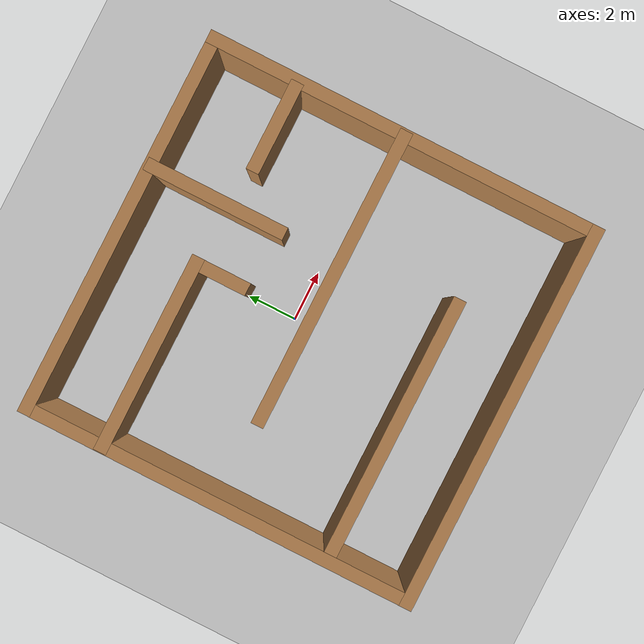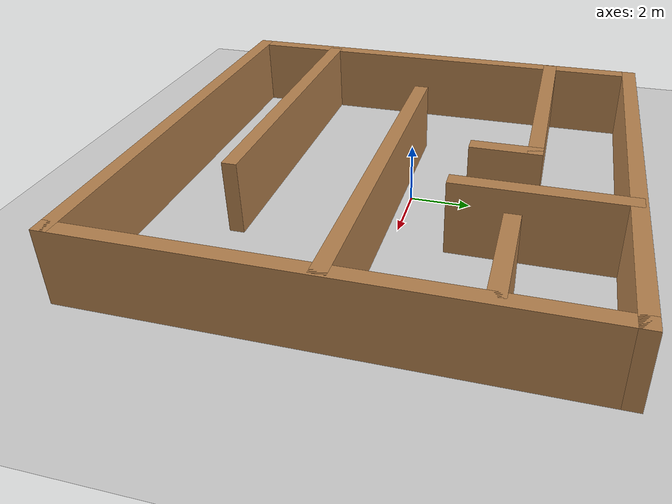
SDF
<sdf version="1.7">
 <world name="default">
  <light name="sun" type="directional">
   <pose>0 0 10 0 -0 0</pose>
   <diffuse>0.8 0.8 0.8 1</diffuse>
   <specular>0.2 0.2 0.2 1</specular>
   <attenuation>
    <range>1000</range>
    <constant>0.9</constant>
    <linear>0.01</linear>
    <quadratic>0.001</quadratic>
   </attenuation>
   <direction>-0.5 0.1 -0.9</direction>
   <spot><inner_angle>0</inner_angle><outer_angle>0</outer_angle><falloff>0</falloff></spot>
  </light>
  <model name="ground_plane">
   <static>1</static>
   <link name="link">
    <collision name="collision">
     <geometry><plane><normal>0 0 1</normal><size>100 100</size></plane></geometry>
     <surface><friction><ode><mu>100</mu><mu2>50</mu2></ode></friction></surface>
    </collision>
    <visual name="visual">
     <cast_shadows>0</cast_shadows>
     <geometry><plane><normal>0 0 1</normal><size>100 100</size></plane></geometry>
     <material>
      <script><uri>file://media/materials/scripts/gazebo.material</uri><name>Gazebo/Grey</name></script>
     </material>
    </visual>
   </link>
  </model>
  <gravity>0 0 -9.8</gravity>
  <magnetic_field>6e-06 2.3e-05 -4.2e-05</magnetic_field>
  <atmosphere type="adiabatic"/>
  <physics type="ode">
   <max_step_size>0.001</max_step_size>
   <real_time_factor>1</real_time_factor>
   <real_time_update_rate>1000</real_time_update_rate>
  </physics>
  <scene><ambient>0.4 0.4 0.4 1</ambient><background>0.7 0.7 0.7 1</background><shadows>1</shadows></scene>
  <audio><device>default</device></audio>
  <spherical_coordinates>
   <surface_model>EARTH_WGS84</surface_model>
   <latitude_deg>0</latitude_deg>
   <longitude_deg>0</longitude_deg>
   <elevation>0</elevation>
   <heading_deg>0</heading_deg>
  </spherical_coordinates>
  <model name="jh_world_2">
   <pose>0.246579 -0.590864 0 0 -0 0</pose>
   <link name="Wall_1">
    <collision name="Wall_1_Collision">
     <geometry><box><size>15.35 0.5 2.5</size></box></geometry>
     <pose>0 0 1.25 0 -0 0</pose>
    </collision>
    <visual name="Wall_1_Visual">
     <pose>0 0 1.25 0 -0 0</pose>
     <geometry><box><size>15.35 0.5 2.5</size></box></geometry>
     <material>
      <script><uri>file://media/materials/scripts/gazebo.material</uri><name>Gazebo/Wood</name></script>
      <ambient>1 1 1 1</ambient>
     </material>
     <meta><layer>0</layer></meta>
    </visual>
    <pose>0 -7.675 0 0 -0 0</pose>
   </link>
   <link name="Wall_10">
    <collision name="Wall_10_Collision">
     <geometry><box><size>11.85 0.5 2.5</size></box></geometry>
     <pose>0 0 1.25 0 -0 0</pose>
    </collision>
    <visual name="Wall_10_Visual">
     <pose>0 0 1.25 0 -0 0</pose>
     <geometry><box><size>11.85 0.5 2.5</size></box></geometry>
     <material>
      <script><uri>file://media/materials/scripts/gazebo.material</uri><name>Gazebo/Wood</name></script>
      <ambient>1 1 1 1</ambient>
     </material>
     <meta><layer>0</layer></meta>
    </visual>
    <pose>1.6812 0.024 0 0 -0 3.14159</pose>
   </link>
   <link name="Wall_12">
    <collision name="Wall_12_Collision">
     <geometry><box><size>7.85 0.5 2.5</size></box></geometry>
     <pose>0 0 1.25 0 -0 0</pose>
    </collision>
    <visual name="Wall_12_Visual">
     <pose>0 0 1.25 0 -0 0</pose>
     <geometry><box><size>7.85 0.5 2.5</size></box></geometry>
     <material>
      <script><uri>file://media/materials/scripts/gazebo.material</uri><name>Gazebo/Wood</name></script>
      <ambient>1 1 1 1</ambient>
     </material>
     <meta><layer>0</layer></meta>
    </visual>
    <pose>-3.727 4.626 0 0 -0 0</pose>
   </link>
   <link name="Wall_15">
    <collision name="Wall_15_Collision">
     <geometry><box><size>2.35 0.5 2.5</size></box></geometry>
     <pose>0 0 1.25 0 -0 0</pose>
    </collision>
    <visual name="Wall_15_Visual">
     <pose>0 0 1.25 0 -0 0</pose>
     <geometry><box><size>2.35 0.5 2.5</size></box></geometry>
     <material>
      <script><uri>file://media/materials/scripts/gazebo.material</uri><name>Gazebo/Wood</name></script>
      <ambient>1 1 1 1</ambient>
     </material>
     <meta><layer>0</layer></meta>
    </visual>
    <pose>-0.052 3.701 0 0 -0 -1.5708</pose>
   </link>
   <link name="Wall_17">
    <collision name="Wall_17_Collision">
     <geometry><box><size>5.5999 0.5 2.5</size></box></geometry>
     <pose>0 0 1.25 0 -0 0</pose>
    </collision>
    <visual name="Wall_17_Visual">
     <pose>0 0 1.25 0 -0 0</pose>
     <geometry><box><size>5.5999 0.5 2.5</size></box></geometry>
     <material>
      <script><uri>file://media/materials/scripts/gazebo.material</uri><name>Gazebo/Wood</name></script>
      <ambient>1 1 1 1</ambient>
     </material>
     <meta><layer>0</layer></meta>
    </visual>
    <pose>2.331 5.039 0 0 -0 -1.5708</pose>
   </link>
   <link name="Wall_19">
    <collision name="Wall_19_Collision">
     <geometry><box><size>3.6 0.5 2.5</size></box></geometry>
     <pose>0 0 1.25 0 -0 0</pose>
    </collision>
    <visual name="Wall_19_Visual">
     <pose>0 0 1.25 0 -0 0</pose>
     <geometry><box><size>3.6 0.5 2.5</size></box></geometry>
     <material>
      <script><uri>file://media/materials/scripts/gazebo.material</uri><name>Gazebo/Wood</name></script>
      <ambient>1 1 1 1</ambient>
     </material>
     <meta><layer>0</layer></meta>
    </visual>
    <pose>5.5947 4.3093 0 0 -0 3.14159</pose>
   </link>
   <link name="Wall_3">
    <collision name="Wall_3_Collision">
     <geometry><box><size>15.35 0.5 2.5</size></box></geometry>
     <pose>0 0 1.25 0 -0 0</pose>
    </collision>
    <visual name="Wall_3_Visual">
     <pose>0 0 1.25 0 -0 0</pose>
     <geometry><box><size>15.35 0.5 2.5</size></box></geometry>
     <material>
      <script><uri>file://media/materials/scripts/gazebo.material</uri><name>Gazebo/Wood</name></script>
      <ambient>1 1 1 1</ambient>
     </material>
     <meta><layer>0</layer></meta>
    </visual>
    <pose>-7.425 -0.25 0 0 -0 1.5708</pose>
   </link>
   <link name="Wall_5">
    <collision name="Wall_5_Collision">
     <geometry><box><size>15.85 0.5 2.5</size></box></geometry>
     <pose>0 0 1.25 0 -0 0</pose>
    </collision>
    <visual name="Wall_5_Visual">
     <pose>0 0 1.25 0 -0 0</pose>
     <geometry><box><size>15.85 0.5 2.5</size></box></geometry>
     <material>
      <script><uri>file://media/materials/scripts/gazebo.material</uri><name>Gazebo/Wood</name></script>
      <ambient>1 1 1 1</ambient>
     </material>
     <meta><layer>0</layer></meta>
    </visual>
    <pose>7.425 0 0 0 -0 1.5708</pose>
   </link>
   <link name="Wall_6">
    <collision name="Wall_6_Collision">
     <geometry><box><size>15.35 0.5 2.5</size></box></geometry>
     <pose>0 0 1.25 0 -0 0</pose>
    </collision>
    <visual name="Wall_6_Visual">
     <pose>0 0 1.25 0 -0 0</pose>
     <geometry><box><size>15.35 0.5 2.5</size></box></geometry>
     <material>
      <script><uri>file://media/materials/scripts/gazebo.material</uri><name>Gazebo/Wood</name></script>
      <ambient>1 1 1 1</ambient>
     </material>
     <meta><layer>0</layer></meta>
    </visual>
    <pose>0 7.675 0 0 -0 3.14159</pose>
   </link>
   <link name="Wall_8">
    <collision name="Wall_8_Collision">
     <geometry><box><size>10.5999 0.5 2.5</size></box></geometry>
     <pose>0 0 1.25 0 -0 0</pose>
    </collision>
    <visual name="Wall_8_Visual">
     <pose>0 0 1.25 0 -0 0</pose>
     <geometry><box><size>10.5999 0.5 2.5</size></box></geometry>
     <material>
      <script><uri>file://media/materials/scripts/gazebo.material</uri><name>Gazebo/Wood</name></script>
      <ambient>1 1 1 1</ambient>
     </material>
     <meta><layer>0</layer></meta>
    </visual>
    <pose>-2.194 -4.419 0 0 -0 0</pose>
   </link>
   <static>1</static>
  </model>
 </world>
</sdf>
